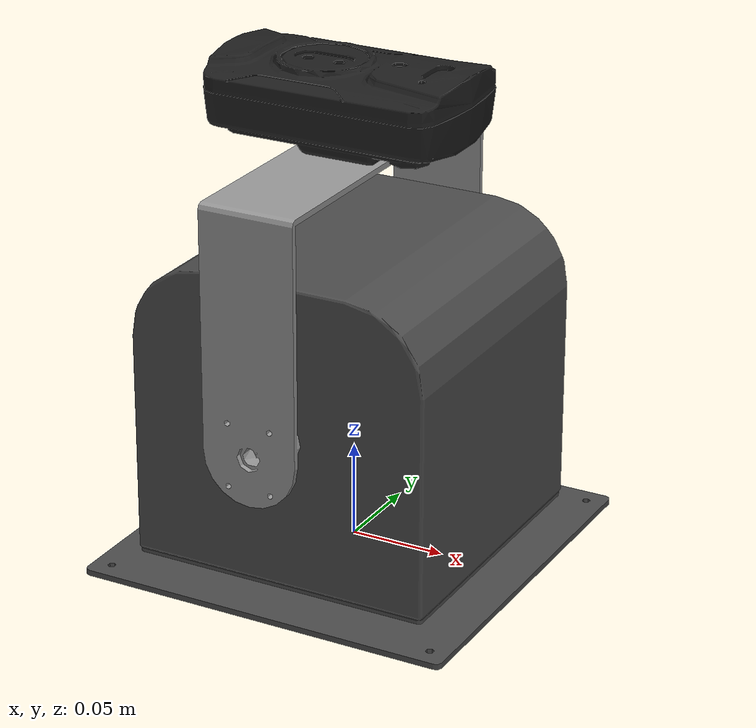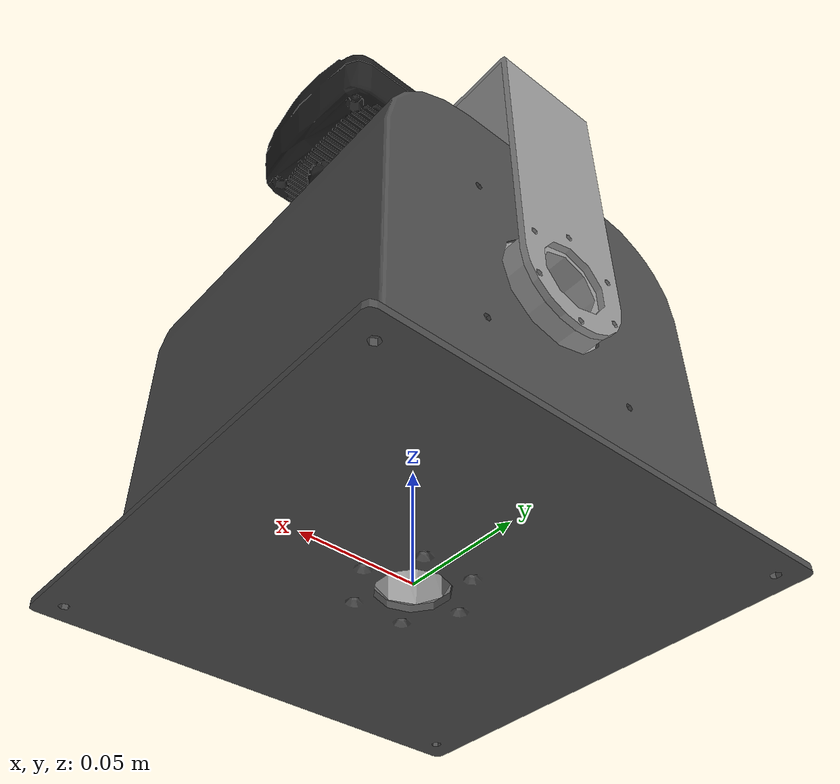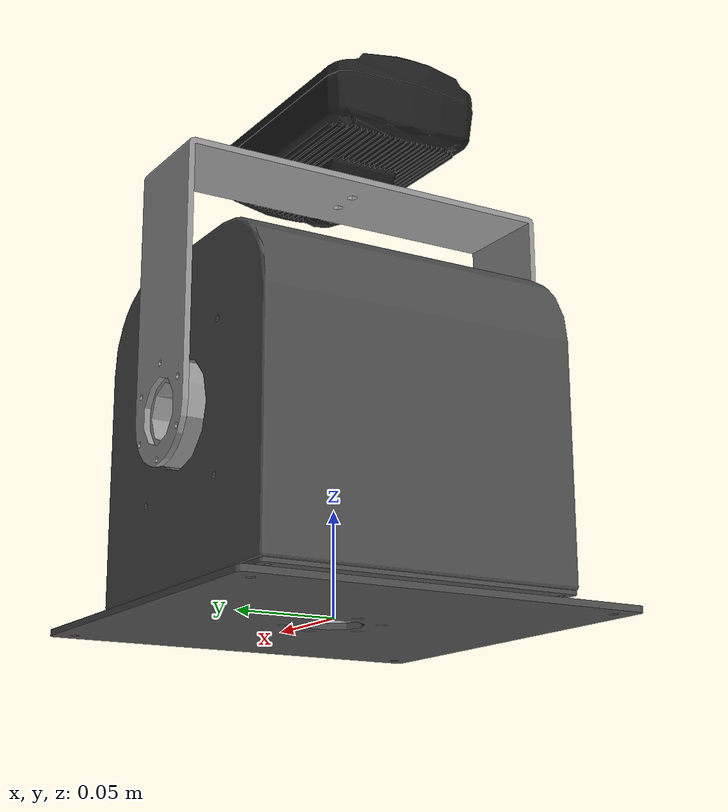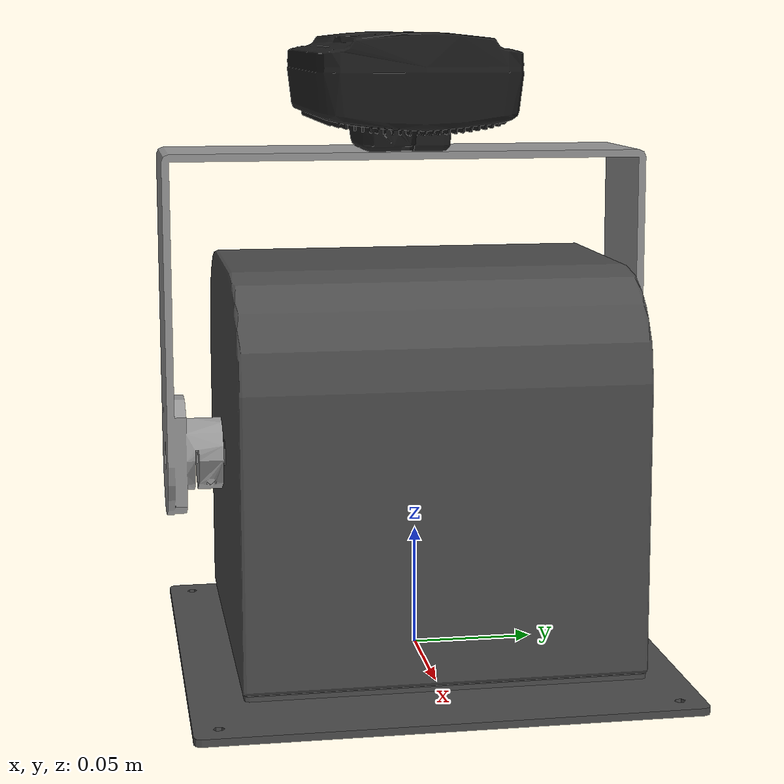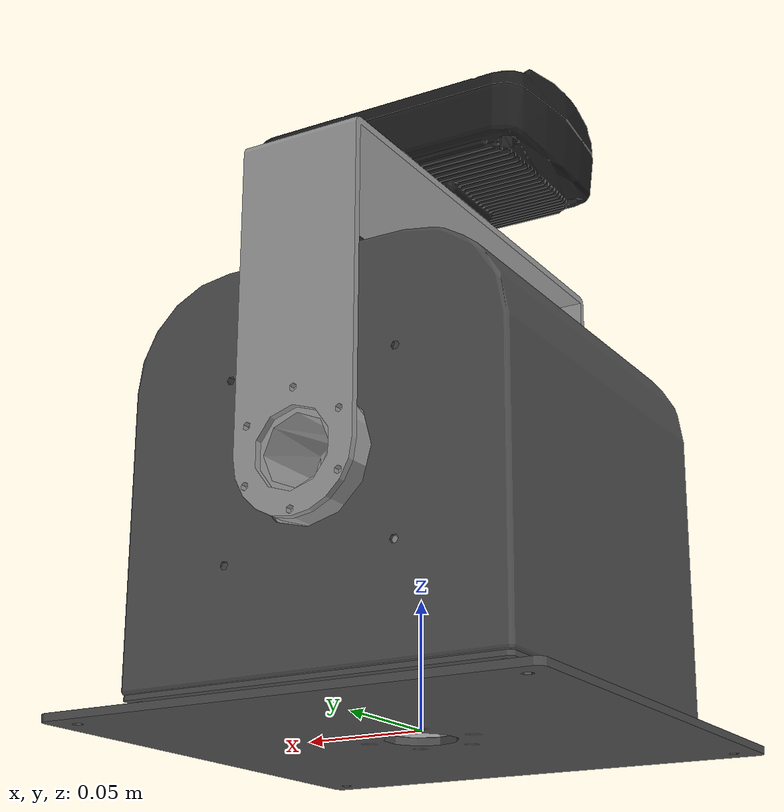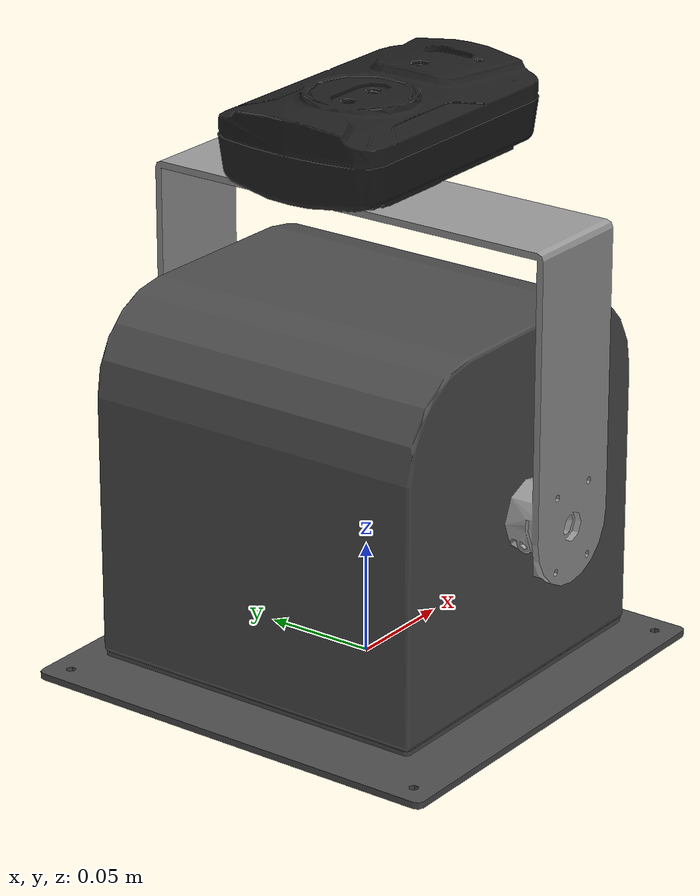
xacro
<?xml version="1.0"?>

<robot name="herkulex_pantilt" xmlns:xacro="http://www.ros.org/wiki/xacro">
  <!-- Include all component files -->
  <xacro:include filename="$(find herkulex_description)/urdf/materials.urdf.xacro" />
  <!-- Define a number of dimensions using properties -->
  <xacro:property name="PI" value="3.1415926" />

  <!-- define joint -->
  <link name="base"/>
  <joint name="fixed" type="fixed">
    <parent link="base"/>
    <child link="link1"/>
     <origin xyz="0 0 0" rpy="0 0 0"/>
  </joint>

  <link name="link1">
    <collision>
      <origin xyz="0 0 0" rpy="0 0 0"/>
      <geometry>
        <mesh filename="package://herkulex_description/meshes//pen_tilt_bottom.STL" scale="0.001 0.001 0.001"/>
      </geometry>
     	<material name="darkgrey"/>
    </collision>
    <visual>
      <origin xyz="0 0 0" rpy="0 0 0"/>
      <geometry>
        <mesh filename="package://herkulex_description/meshes//pen_tilt_bottom.STL" scale="0.001 0.001 0.001"/>
      </geometry>
      	<material name="darkgrey"/>
    </visual>
  </link>

  <joint name="joint1" type="revolute">
    <parent link="link1"/>
    <child link="pen_module"/>
    <origin xyz="0 0 0" rpy="0 0 0"/>
    <axis xyz="0 0 1"/>
    <limit effort="30" lower="-3.14159" upper="3.14159" velocity="1.571"/>
  </joint>

  <link name="pen_module">
    <collision>
      <origin xyz="0 0 0" rpy="0 0 0"/>
      <geometry>
        <mesh filename="package://herkulex_description/meshes//pen_module.STL" scale="0.001 0.001 0.001"/>
      </geometry>
     	<material name="grey"/>
    </collision>
    <visual>
      <origin xyz="0 0 0" rpy="0 0 0"/>
      <geometry>
        <mesh filename="package://herkulex_description/meshes//pen_module.STL" scale="0.001 0.001 0.001"/>
      </geometry>
      	<material name="grey"/>
    </visual>
  </link>

  <joint name="link2" type="fixed">
    <parent link="pen_module"/>
    <child link="tilt_module"/>
  </joint>

  <link name="tilt_module">
    <collision>
      <origin xyz="0 0 0" rpy="0 0 0"/>
      <geometry>
        <mesh filename="package://herkulex_description/meshes//tilt_module.STL" scale="0.001 0.001 0.001"/>
      </geometry>
     	<material name="grey"/>
    </collision>
    <visual>
      <origin xyz="0 0 0" rpy="0 0 0"/>
      <geometry>
        <mesh filename="package://herkulex_description/meshes//tilt_module.STL" scale="0.001 0.001 0.001"/>
      </geometry>
      	<material name="grey"/>
    </visual>
  </link>

  <joint name="joint2" type="revolute">
    <parent link="tilt_module"/>
    <child link="pen_tilt_bracket"/>
    <origin xyz="0 0 0.086" rpy="0 -1.5708 0"/>
    <axis xyz="0 1 0"/>
    <limit effort="30" lower="-3.14159" upper="0.0872665" velocity="1.571"/>
  </joint>

  <link name="pen_tilt_bracket">
    <collision>
      <origin xyz="0 0 0.086" rpy="0 0 0"/>
      <geometry>
        <mesh filename="package://herkulex_description/meshes//pen_tilt_bracket.STL" scale="0.001 0.001 0.001"/>
      </geometry>
     	<material name="grey"/>
    </collision>
    <visual>
      <origin xyz="0 0 0" rpy="0 0 0"/>
      <geometry>
        <mesh filename="package://herkulex_description/meshes//pen_tilt_bracket.STL" scale="0.001 0.001 0.001"/>
      </geometry>
      	<material name="grey"/>
    </visual>
  </link>

  <joint name="cover" type="fixed">
    <parent link="pen_module"/>
    <child link="pen_tilt_cover"/>
     <origin xyz="0 0 0" rpy="0 0 0"/>
  </joint>

  <link name="pen_tilt_cover">
    <collision>
      <origin xyz="0 0 0" rpy="0 0 0"/>
      <geometry>
        <mesh filename="package://herkulex_description/meshes//pen_tilt_cover.STL" scale="0.001 0.001 0.001"/>
      </geometry>
     	<material name="darkgrey"/>
    </collision>
    <visual>
      <origin xyz="0 0 0" rpy="0 0 0"/>
      <geometry>
        <mesh filename="package://herkulex_description/meshes//pen_tilt_cover.STL" scale="0.001 0.001 0.001"/>
      </geometry>
      	<material name="darkgrey"/>
    </visual>
  </link>

  <joint name="eoc_camera_module" type="fixed">
    <parent link="pen_tilt_bracket"/>
    <child link="eoc_module"/>
     <origin xyz="0 0 0" rpy="0 0 0"/>
  </joint>

  <link name="eoc_module">
    <collision>
      <origin xyz="0 0 0" rpy="0 0 0"/>
      <geometry>
        <mesh filename="package://herkulex_description/meshes//eoc_module.STL" scale="0.001 0.001 0.001"/>
      </geometry>
     	<material name="transparentblack"/>
    </collision>
    <visual>
      <origin xyz="0 0 0" rpy="0 0 0"/>
      <geometry>
        <mesh filename="package://herkulex_description/meshes//eoc_module.STL" scale="0.001 0.001 0.001"/>
      </geometry>
      	<material name="transparentblack"/>
    </visual>
  </link>

</robot>
